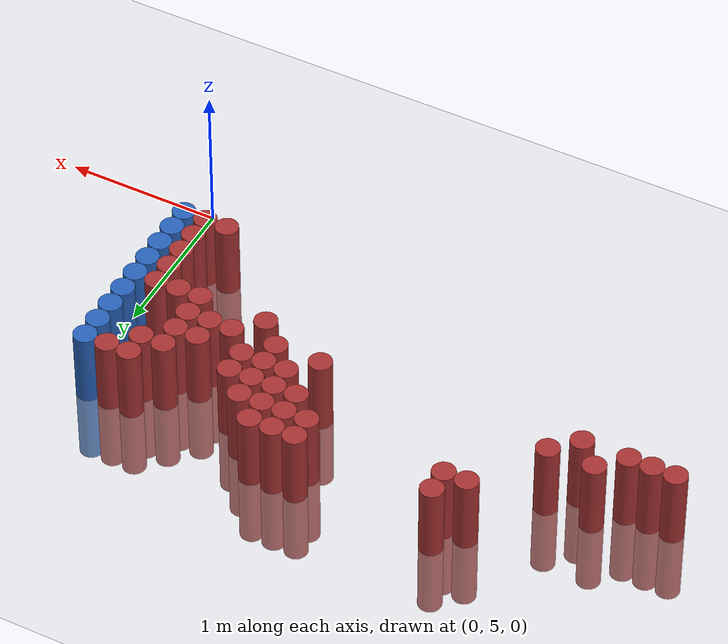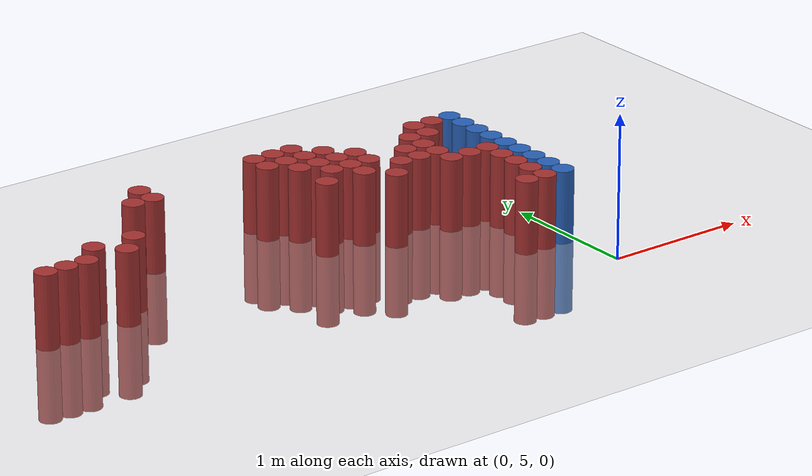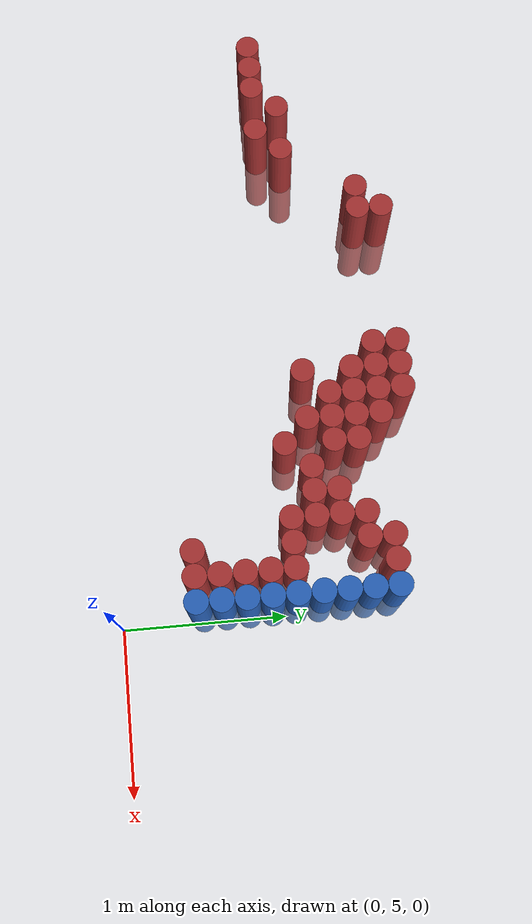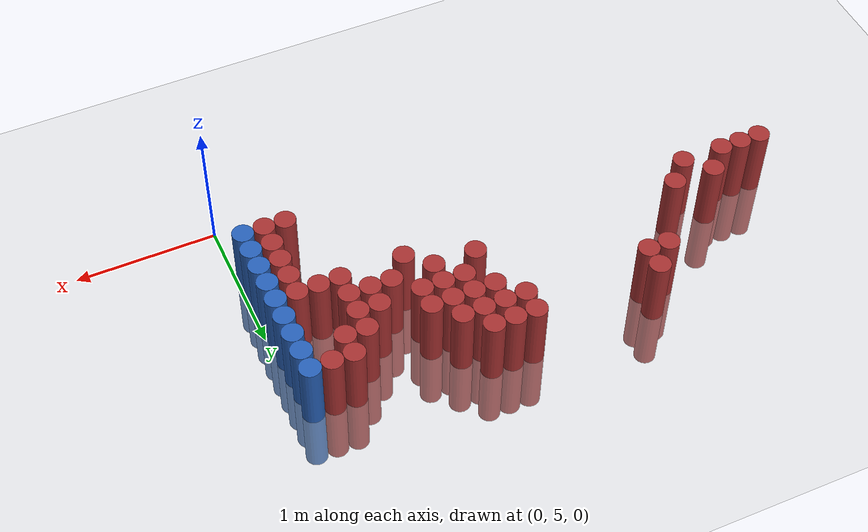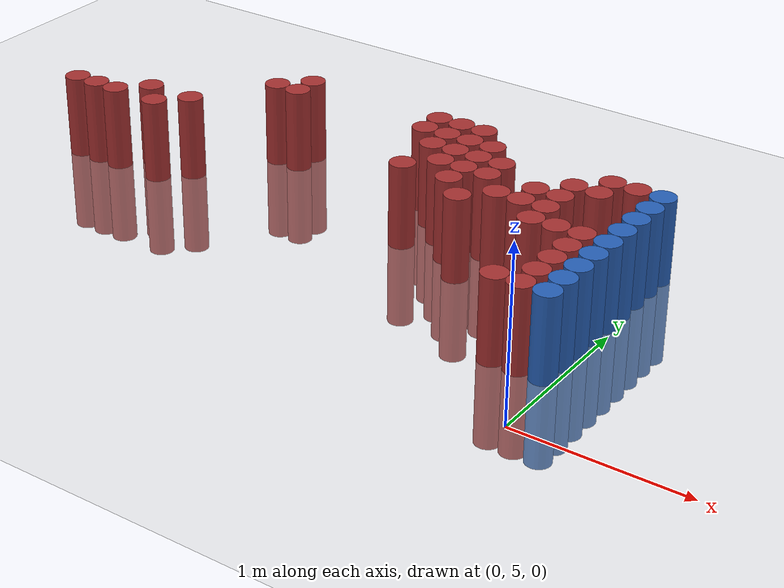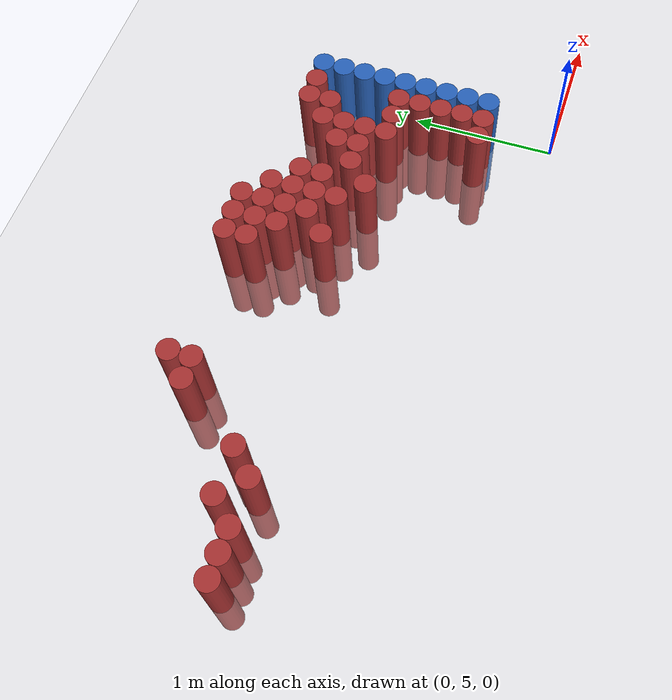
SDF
<sdf version="1.6">
 <world name="default">
  <model name="ground_plane">
   <static>1</static>
   <link name="link">
    <collision name="collision">
     <geometry><plane><normal>0 0 1</normal><size>100 100</size></plane></geometry>
     <surface><friction><ode><mu>100</mu><mu2>50</mu2></ode></friction></surface>
    </collision>
    <visual name="visual">
     <cast_shadows>0</cast_shadows>
     <geometry><plane><normal>0 0 1</normal><size>100 100</size></plane></geometry>
     <material>
      <script><uri>file://media/materials/scripts/gazebo.material</uri><name>Gazebo/Grey</name></script>
     </material>
    </visual>
   </link>
  </model>
  <model name="unit_cylinder_152">
   <static>1</static>
   <pose>-3.675000 6.075000 0.000000 0.000000 0.000000 0.000000</pose>
   <link name="link">
    <inertial>
     <mass>1</mass>
     <inertia><ixx>0.145833</ixx><ixy>0</ixy><ixz>0</ixz><iyy>0.145833</iyy><iyz>0</iyz><izz>0.125</izz></inertia>
    </inertial>
    <collision name="collision">
     <geometry><cylinder><radius>0.075000</radius><length>1</length></cylinder></geometry>
    </collision>
    <visual name="visual">
     <geometry><cylinder><radius>0.075000</radius><length>1</length></cylinder></geometry>
     <material>
      <ambient>0.648000 0.192000 0.192000 1</ambient>
      <diffuse>0.648000 0.192000 0.192000 1</diffuse>
     </material>
     <material>
      <script><name>Gazebo/Grey</name><uri>file://media/materials/scripts/gazebo.material</uri></script>
     </material>
    </visual>
   </link>
  </model>
  <model name="unit_cylinder_153">
   <static>1</static>
   <pose>-3.525000 6.075000 0.000000 0.000000 0.000000 0.000000</pose>
   <link name="link">
    <inertial>
     <mass>1</mass>
     <inertia><ixx>0.145833</ixx><ixy>0</ixy><ixz>0</ixz><iyy>0.145833</iyy><iyz>0</iyz><izz>0.125</izz></inertia>
    </inertial>
    <collision name="collision">
     <geometry><cylinder><radius>0.075000</radius><length>1</length></cylinder></geometry>
    </collision>
    <visual name="visual">
     <geometry><cylinder><radius>0.075000</radius><length>1</length></cylinder></geometry>
     <material>
      <ambient>0.648000 0.192000 0.192000 1</ambient>
      <diffuse>0.648000 0.192000 0.192000 1</diffuse>
     </material>
     <material>
      <script><name>Gazebo/Grey</name><uri>file://media/materials/scripts/gazebo.material</uri></script>
     </material>
    </visual>
   </link>
  </model>
  <model name="unit_cylinder_154">
   <static>1</static>
   <pose>-3.375000 6.075000 0.000000 0.000000 0.000000 0.000000</pose>
   <link name="link">
    <inertial>
     <mass>1</mass>
     <inertia><ixx>0.145833</ixx><ixy>0</ixy><ixz>0</ixz><iyy>0.145833</iyy><iyz>0</iyz><izz>0.125</izz></inertia>
    </inertial>
    <collision name="collision">
     <geometry><cylinder><radius>0.075000</radius><length>1</length></cylinder></geometry>
    </collision>
    <visual name="visual">
     <geometry><cylinder><radius>0.075000</radius><length>1</length></cylinder></geometry>
     <material>
      <ambient>0.648000 0.192000 0.192000 1</ambient>
      <diffuse>0.648000 0.192000 0.192000 1</diffuse>
     </material>
     <material>
      <script><name>Gazebo/Grey</name><uri>file://media/materials/scripts/gazebo.material</uri></script>
     </material>
    </visual>
   </link>
  </model>
  <model name="unit_cylinder_155">
   <static>1</static>
   <pose>-3.225000 6.225000 0.000000 0.000000 0.000000 0.000000</pose>
   <link name="link">
    <inertial>
     <mass>1</mass>
     <inertia><ixx>0.145833</ixx><ixy>0</ixy><ixz>0</ixz><iyy>0.145833</iyy><iyz>0</iyz><izz>0.125</izz></inertia>
    </inertial>
    <collision name="collision">
     <geometry><cylinder><radius>0.075000</radius><length>1</length></cylinder></geometry>
    </collision>
    <visual name="visual">
     <geometry><cylinder><radius>0.075000</radius><length>1</length></cylinder></geometry>
     <material>
      <ambient>0.648000 0.192000 0.192000 1</ambient>
      <diffuse>0.648000 0.192000 0.192000 1</diffuse>
     </material>
     <material>
      <script><name>Gazebo/Grey</name><uri>file://media/materials/scripts/gazebo.material</uri></script>
     </material>
    </visual>
   </link>
  </model>
  <model name="unit_cylinder_159">
   <static>1</static>
   <pose>-3.075000 6.075000 0.000000 0.000000 0.000000 0.000000</pose>
   <link name="link">
    <inertial>
     <mass>1</mass>
     <inertia><ixx>0.145833</ixx><ixy>0</ixy><ixz>0</ixz><iyy>0.145833</iyy><iyz>0</iyz><izz>0.125</izz></inertia>
    </inertial>
    <collision name="collision">
     <geometry><cylinder><radius>0.075000</radius><length>1</length></cylinder></geometry>
    </collision>
    <visual name="visual">
     <geometry><cylinder><radius>0.075000</radius><length>1</length></cylinder></geometry>
     <material>
      <ambient>0.648000 0.192000 0.192000 1</ambient>
      <diffuse>0.648000 0.192000 0.192000 1</diffuse>
     </material>
     <material>
      <script><name>Gazebo/Grey</name><uri>file://media/materials/scripts/gazebo.material</uri></script>
     </material>
    </visual>
   </link>
  </model>
  <model name="unit_cylinder_164">
   <static>1</static>
   <pose>-2.925000 6.225000 0.000000 0.000000 0.000000 0.000000</pose>
   <link name="link">
    <inertial>
     <mass>1</mass>
     <inertia><ixx>0.145833</ixx><ixy>0</ixy><ixz>0</ixz><iyy>0.145833</iyy><iyz>0</iyz><izz>0.125</izz></inertia>
    </inertial>
    <collision name="collision">
     <geometry><cylinder><radius>0.075000</radius><length>1</length></cylinder></geometry>
    </collision>
    <visual name="visual">
     <geometry><cylinder><radius>0.075000</radius><length>1</length></cylinder></geometry>
     <material>
      <ambient>0.648000 0.192000 0.192000 1</ambient>
      <diffuse>0.648000 0.192000 0.192000 1</diffuse>
     </material>
     <material>
      <script><name>Gazebo/Grey</name><uri>file://media/materials/scripts/gazebo.material</uri></script>
     </material>
    </visual>
   </link>
  </model>
  <model name="unit_cylinder_170">
   <static>1</static>
   <pose>-2.625000 6.675000 0.000000 0.000000 0.000000 0.000000</pose>
   <link name="link">
    <inertial>
     <mass>1</mass>
     <inertia><ixx>0.145833</ixx><ixy>0</ixy><ixz>0</ixz><iyy>0.145833</iyy><iyz>0</iyz><izz>0.125</izz></inertia>
    </inertial>
    <collision name="collision">
     <geometry><cylinder><radius>0.075000</radius><length>1</length></cylinder></geometry>
    </collision>
    <visual name="visual">
     <geometry><cylinder><radius>0.075000</radius><length>1</length></cylinder></geometry>
     <material>
      <ambient>0.648000 0.192000 0.192000 1</ambient>
      <diffuse>0.648000 0.192000 0.192000 1</diffuse>
     </material>
     <material>
      <script><name>Gazebo/Grey</name><uri>file://media/materials/scripts/gazebo.material</uri></script>
     </material>
    </visual>
   </link>
  </model>
  <model name="unit_cylinder_172">
   <static>1</static>
   <pose>-2.475000 6.675000 0.000000 0.000000 0.000000 0.000000</pose>
   <link name="link">
    <inertial>
     <mass>1</mass>
     <inertia><ixx>0.145833</ixx><ixy>0</ixy><ixz>0</ixz><iyy>0.145833</iyy><iyz>0</iyz><izz>0.125</izz></inertia>
    </inertial>
    <collision name="collision">
     <geometry><cylinder><radius>0.075000</radius><length>1</length></cylinder></geometry>
    </collision>
    <visual name="visual">
     <geometry><cylinder><radius>0.075000</radius><length>1</length></cylinder></geometry>
     <material>
      <ambient>0.648000 0.192000 0.192000 1</ambient>
      <diffuse>0.648000 0.192000 0.192000 1</diffuse>
     </material>
     <material>
      <script><name>Gazebo/Grey</name><uri>file://media/materials/scripts/gazebo.material</uri></script>
     </material>
    </visual>
   </link>
  </model>
  <model name="unit_cylinder_173">
   <static>1</static>
   <pose>-2.475000 6.825000 0.000000 0.000000 0.000000 0.000000</pose>
   <link name="link">
    <inertial>
     <mass>1</mass>
     <inertia><ixx>0.145833</ixx><ixy>0</ixy><ixz>0</ixz><iyy>0.145833</iyy><iyz>0</iyz><izz>0.125</izz></inertia>
    </inertial>
    <collision name="collision">
     <geometry><cylinder><radius>0.075000</radius><length>1</length></cylinder></geometry>
    </collision>
    <visual name="visual">
     <geometry><cylinder><radius>0.075000</radius><length>1</length></cylinder></geometry>
     <material>
      <ambient>0.648000 0.192000 0.192000 1</ambient>
      <diffuse>0.648000 0.192000 0.192000 1</diffuse>
     </material>
     <material>
      <script><name>Gazebo/Grey</name><uri>file://media/materials/scripts/gazebo.material</uri></script>
     </material>
    </visual>
   </link>
  </model>
  <model name="unit_cylinder_187">
   <static>1</static>
   <pose>-1.575000 6.675000 0.000000 0.000000 0.000000 0.000000</pose>
   <link name="link">
    <inertial>
     <mass>1</mass>
     <inertia><ixx>0.145833</ixx><ixy>0</ixy><ixz>0</ixz><iyy>0.145833</iyy><iyz>0</iyz><izz>0.125</izz></inertia>
    </inertial>
    <collision name="collision">
     <geometry><cylinder><radius>0.075000</radius><length>1</length></cylinder></geometry>
    </collision>
    <visual name="visual">
     <geometry><cylinder><radius>0.075000</radius><length>1</length></cylinder></geometry>
     <material>
      <ambient>0.648000 0.192000 0.192000 1</ambient>
      <diffuse>0.648000 0.192000 0.192000 1</diffuse>
     </material>
     <material>
      <script><name>Gazebo/Grey</name><uri>file://media/materials/scripts/gazebo.material</uri></script>
     </material>
    </visual>
   </link>
  </model>
  <model name="unit_cylinder_188">
   <static>1</static>
   <pose>-1.575000 6.825000 0.000000 0.000000 0.000000 0.000000</pose>
   <link name="link">
    <inertial>
     <mass>1</mass>
     <inertia><ixx>0.145833</ixx><ixy>0</ixy><ixz>0</ixz><iyy>0.145833</iyy><iyz>0</iyz><izz>0.125</izz></inertia>
    </inertial>
    <collision name="collision">
     <geometry><cylinder><radius>0.075000</radius><length>1</length></cylinder></geometry>
    </collision>
    <visual name="visual">
     <geometry><cylinder><radius>0.075000</radius><length>1</length></cylinder></geometry>
     <material>
      <ambient>0.648000 0.192000 0.192000 1</ambient>
      <diffuse>0.648000 0.192000 0.192000 1</diffuse>
     </material>
     <material>
      <script><name>Gazebo/Grey</name><uri>file://media/materials/scripts/gazebo.material</uri></script>
     </material>
    </visual>
   </link>
  </model>
  <model name="unit_cylinder_189">
   <static>1</static>
   <pose>-1.425000 6.225000 0.000000 0.000000 0.000000 0.000000</pose>
   <link name="link">
    <inertial>
     <mass>1</mass>
     <inertia><ixx>0.145833</ixx><ixy>0</ixy><ixz>0</ixz><iyy>0.145833</iyy><iyz>0</iyz><izz>0.125</izz></inertia>
    </inertial>
    <collision name="collision">
     <geometry><cylinder><radius>0.075000</radius><length>1</length></cylinder></geometry>
    </collision>
    <visual name="visual">
     <geometry><cylinder><radius>0.075000</radius><length>1</length></cylinder></geometry>
     <material>
      <ambient>0.648000 0.192000 0.192000 1</ambient>
      <diffuse>0.648000 0.192000 0.192000 1</diffuse>
     </material>
     <material>
      <script><name>Gazebo/Grey</name><uri>file://media/materials/scripts/gazebo.material</uri></script>
     </material>
    </visual>
   </link>
  </model>
  <model name="unit_cylinder_190">
   <static>1</static>
   <pose>-1.425000 6.525000 0.000000 0.000000 0.000000 0.000000</pose>
   <link name="link">
    <inertial>
     <mass>1</mass>
     <inertia><ixx>0.145833</ixx><ixy>0</ixy><ixz>0</ixz><iyy>0.145833</iyy><iyz>0</iyz><izz>0.125</izz></inertia>
    </inertial>
    <collision name="collision">
     <geometry><cylinder><radius>0.075000</radius><length>1</length></cylinder></geometry>
    </collision>
    <visual name="visual">
     <geometry><cylinder><radius>0.075000</radius><length>1</length></cylinder></geometry>
     <material>
      <ambient>0.648000 0.192000 0.192000 1</ambient>
      <diffuse>0.648000 0.192000 0.192000 1</diffuse>
     </material>
     <material>
      <script><name>Gazebo/Grey</name><uri>file://media/materials/scripts/gazebo.material</uri></script>
     </material>
    </visual>
   </link>
  </model>
  <model name="unit_cylinder_191">
   <static>1</static>
   <pose>-1.425000 6.675000 0.000000 0.000000 0.000000 0.000000</pose>
   <link name="link">
    <inertial>
     <mass>1</mass>
     <inertia><ixx>0.145833</ixx><ixy>0</ixy><ixz>0</ixz><iyy>0.145833</iyy><iyz>0</iyz><izz>0.125</izz></inertia>
    </inertial>
    <collision name="collision">
     <geometry><cylinder><radius>0.075000</radius><length>1</length></cylinder></geometry>
    </collision>
    <visual name="visual">
     <geometry><cylinder><radius>0.075000</radius><length>1</length></cylinder></geometry>
     <material>
      <ambient>0.648000 0.192000 0.192000 1</ambient>
      <diffuse>0.648000 0.192000 0.192000 1</diffuse>
     </material>
     <material>
      <script><name>Gazebo/Grey</name><uri>file://media/materials/scripts/gazebo.material</uri></script>
     </material>
    </visual>
   </link>
  </model>
  <model name="unit_cylinder_192">
   <static>1</static>
   <pose>-1.425000 6.825000 0.000000 0.000000 0.000000 0.000000</pose>
   <link name="link">
    <inertial>
     <mass>1</mass>
     <inertia><ixx>0.145833</ixx><ixy>0</ixy><ixz>0</ixz><iyy>0.145833</iyy><iyz>0</iyz><izz>0.125</izz></inertia>
    </inertial>
    <collision name="collision">
     <geometry><cylinder><radius>0.075000</radius><length>1</length></cylinder></geometry>
    </collision>
    <visual name="visual">
     <geometry><cylinder><radius>0.075000</radius><length>1</length></cylinder></geometry>
     <material>
      <ambient>0.648000 0.192000 0.192000 1</ambient>
      <diffuse>0.648000 0.192000 0.192000 1</diffuse>
     </material>
     <material>
      <script><name>Gazebo/Grey</name><uri>file://media/materials/scripts/gazebo.material</uri></script>
     </material>
    </visual>
   </link>
  </model>
  <model name="unit_cylinder_195">
   <static>1</static>
   <pose>-1.275000 6.375000 0.000000 0.000000 0.000000 0.000000</pose>
   <link name="link">
    <inertial>
     <mass>1</mass>
     <inertia><ixx>0.145833</ixx><ixy>0</ixy><ixz>0</ixz><iyy>0.145833</iyy><iyz>0</iyz><izz>0.125</izz></inertia>
    </inertial>
    <collision name="collision">
     <geometry><cylinder><radius>0.075000</radius><length>1</length></cylinder></geometry>
    </collision>
    <visual name="visual">
     <geometry><cylinder><radius>0.075000</radius><length>1</length></cylinder></geometry>
     <material>
      <ambient>0.648000 0.192000 0.192000 1</ambient>
      <diffuse>0.648000 0.192000 0.192000 1</diffuse>
     </material>
     <material>
      <script><name>Gazebo/Grey</name><uri>file://media/materials/scripts/gazebo.material</uri></script>
     </material>
    </visual>
   </link>
  </model>
  <model name="unit_cylinder_196">
   <static>1</static>
   <pose>-1.275000 6.525000 0.000000 0.000000 0.000000 0.000000</pose>
   <link name="link">
    <inertial>
     <mass>1</mass>
     <inertia><ixx>0.145833</ixx><ixy>0</ixy><ixz>0</ixz><iyy>0.145833</iyy><iyz>0</iyz><izz>0.125</izz></inertia>
    </inertial>
    <collision name="collision">
     <geometry><cylinder><radius>0.075000</radius><length>1</length></cylinder></geometry>
    </collision>
    <visual name="visual">
     <geometry><cylinder><radius>0.075000</radius><length>1</length></cylinder></geometry>
     <material>
      <ambient>0.648000 0.192000 0.192000 1</ambient>
      <diffuse>0.648000 0.192000 0.192000 1</diffuse>
     </material>
     <material>
      <script><name>Gazebo/Grey</name><uri>file://media/materials/scripts/gazebo.material</uri></script>
     </material>
    </visual>
   </link>
  </model>
  <model name="unit_cylinder_197">
   <static>1</static>
   <pose>-1.275000 6.675000 0.000000 0.000000 0.000000 0.000000</pose>
   <link name="link">
    <inertial>
     <mass>1</mass>
     <inertia><ixx>0.145833</ixx><ixy>0</ixy><ixz>0</ixz><iyy>0.145833</iyy><iyz>0</iyz><izz>0.125</izz></inertia>
    </inertial>
    <collision name="collision">
     <geometry><cylinder><radius>0.075000</radius><length>1</length></cylinder></geometry>
    </collision>
    <visual name="visual">
     <geometry><cylinder><radius>0.075000</radius><length>1</length></cylinder></geometry>
     <material>
      <ambient>0.648000 0.192000 0.192000 1</ambient>
      <diffuse>0.648000 0.192000 0.192000 1</diffuse>
     </material>
     <material>
      <script><name>Gazebo/Grey</name><uri>file://media/materials/scripts/gazebo.material</uri></script>
     </material>
    </visual>
   </link>
  </model>
  <model name="unit_cylinder_198">
   <static>1</static>
   <pose>-1.275000 6.825000 0.000000 0.000000 0.000000 0.000000</pose>
   <link name="link">
    <inertial>
     <mass>1</mass>
     <inertia><ixx>0.145833</ixx><ixy>0</ixy><ixz>0</ixz><iyy>0.145833</iyy><iyz>0</iyz><izz>0.125</izz></inertia>
    </inertial>
    <collision name="collision">
     <geometry><cylinder><radius>0.075000</radius><length>1</length></cylinder></geometry>
    </collision>
    <visual name="visual">
     <geometry><cylinder><radius>0.075000</radius><length>1</length></cylinder></geometry>
     <material>
      <ambient>0.648000 0.192000 0.192000 1</ambient>
      <diffuse>0.648000 0.192000 0.192000 1</diffuse>
     </material>
     <material>
      <script><name>Gazebo/Grey</name><uri>file://media/materials/scripts/gazebo.material</uri></script>
     </material>
    </visual>
   </link>
  </model>
  <model name="unit_cylinder_202">
   <static>1</static>
   <pose>-1.125000 6.225000 0.000000 0.000000 0.000000 0.000000</pose>
   <link name="link">
    <inertial>
     <mass>1</mass>
     <inertia><ixx>0.145833</ixx><ixy>0</ixy><ixz>0</ixz><iyy>0.145833</iyy><iyz>0</iyz><izz>0.125</izz></inertia>
    </inertial>
    <collision name="collision">
     <geometry><cylinder><radius>0.075000</radius><length>1</length></cylinder></geometry>
    </collision>
    <visual name="visual">
     <geometry><cylinder><radius>0.075000</radius><length>1</length></cylinder></geometry>
     <material>
      <ambient>0.648000 0.192000 0.192000 1</ambient>
      <diffuse>0.648000 0.192000 0.192000 1</diffuse>
     </material>
     <material>
      <script><name>Gazebo/Grey</name><uri>file://media/materials/scripts/gazebo.material</uri></script>
     </material>
    </visual>
   </link>
  </model>
  <model name="unit_cylinder_203">
   <static>1</static>
   <pose>-1.125000 6.375000 0.000000 0.000000 0.000000 0.000000</pose>
   <link name="link">
    <inertial>
     <mass>1</mass>
     <inertia><ixx>0.145833</ixx><ixy>0</ixy><ixz>0</ixz><iyy>0.145833</iyy><iyz>0</iyz><izz>0.125</izz></inertia>
    </inertial>
    <collision name="collision">
     <geometry><cylinder><radius>0.075000</radius><length>1</length></cylinder></geometry>
    </collision>
    <visual name="visual">
     <geometry><cylinder><radius>0.075000</radius><length>1</length></cylinder></geometry>
     <material>
      <ambient>0.648000 0.192000 0.192000 1</ambient>
      <diffuse>0.648000 0.192000 0.192000 1</diffuse>
     </material>
     <material>
      <script><name>Gazebo/Grey</name><uri>file://media/materials/scripts/gazebo.material</uri></script>
     </material>
    </visual>
   </link>
  </model>
  <model name="unit_cylinder_204">
   <static>1</static>
   <pose>-1.125000 6.525000 0.000000 0.000000 0.000000 0.000000</pose>
   <link name="link">
    <inertial>
     <mass>1</mass>
     <inertia><ixx>0.145833</ixx><ixy>0</ixy><ixz>0</ixz><iyy>0.145833</iyy><iyz>0</iyz><izz>0.125</izz></inertia>
    </inertial>
    <collision name="collision">
     <geometry><cylinder><radius>0.075000</radius><length>1</length></cylinder></geometry>
    </collision>
    <visual name="visual">
     <geometry><cylinder><radius>0.075000</radius><length>1</length></cylinder></geometry>
     <material>
      <ambient>0.648000 0.192000 0.192000 1</ambient>
      <diffuse>0.648000 0.192000 0.192000 1</diffuse>
     </material>
     <material>
      <script><name>Gazebo/Grey</name><uri>file://media/materials/scripts/gazebo.material</uri></script>
     </material>
    </visual>
   </link>
  </model>
  <model name="unit_cylinder_205">
   <static>1</static>
   <pose>-1.125000 6.675000 0.000000 0.000000 0.000000 0.000000</pose>
   <link name="link">
    <inertial>
     <mass>1</mass>
     <inertia><ixx>0.145833</ixx><ixy>0</ixy><ixz>0</ixz><iyy>0.145833</iyy><iyz>0</iyz><izz>0.125</izz></inertia>
    </inertial>
    <collision name="collision">
     <geometry><cylinder><radius>0.075000</radius><length>1</length></cylinder></geometry>
    </collision>
    <visual name="visual">
     <geometry><cylinder><radius>0.075000</radius><length>1</length></cylinder></geometry>
     <material>
      <ambient>0.648000 0.192000 0.192000 1</ambient>
      <diffuse>0.648000 0.192000 0.192000 1</diffuse>
     </material>
     <material>
      <script><name>Gazebo/Grey</name><uri>file://media/materials/scripts/gazebo.material</uri></script>
     </material>
    </visual>
   </link>
  </model>
  <model name="unit_cylinder_207">
   <static>1</static>
   <pose>-0.975000 6.075000 0.000000 0.000000 0.000000 0.000000</pose>
   <link name="link">
    <inertial>
     <mass>1</mass>
     <inertia><ixx>0.145833</ixx><ixy>0</ixy><ixz>0</ixz><iyy>0.145833</iyy><iyz>0</iyz><izz>0.125</izz></inertia>
    </inertial>
    <collision name="collision">
     <geometry><cylinder><radius>0.075000</radius><length>1</length></cylinder></geometry>
    </collision>
    <visual name="visual">
     <geometry><cylinder><radius>0.075000</radius><length>1</length></cylinder></geometry>
     <material>
      <ambient>0.648000 0.192000 0.192000 1</ambient>
      <diffuse>0.648000 0.192000 0.192000 1</diffuse>
     </material>
     <material>
      <script><name>Gazebo/Grey</name><uri>file://media/materials/scripts/gazebo.material</uri></script>
     </material>
    </visual>
   </link>
  </model>
  <model name="unit_cylinder_208">
   <static>1</static>
   <pose>-0.975000 6.375000 0.000000 0.000000 0.000000 0.000000</pose>
   <link name="link">
    <inertial>
     <mass>1</mass>
     <inertia><ixx>0.145833</ixx><ixy>0</ixy><ixz>0</ixz><iyy>0.145833</iyy><iyz>0</iyz><izz>0.125</izz></inertia>
    </inertial>
    <collision name="collision">
     <geometry><cylinder><radius>0.075000</radius><length>1</length></cylinder></geometry>
    </collision>
    <visual name="visual">
     <geometry><cylinder><radius>0.075000</radius><length>1</length></cylinder></geometry>
     <material>
      <ambient>0.648000 0.192000 0.192000 1</ambient>
      <diffuse>0.648000 0.192000 0.192000 1</diffuse>
     </material>
     <material>
      <script><name>Gazebo/Grey</name><uri>file://media/materials/scripts/gazebo.material</uri></script>
     </material>
    </visual>
   </link>
  </model>
  <model name="unit_cylinder_209">
   <static>1</static>
   <pose>-0.975000 6.525000 0.000000 0.000000 0.000000 0.000000</pose>
   <link name="link">
    <inertial>
     <mass>1</mass>
     <inertia><ixx>0.145833</ixx><ixy>0</ixy><ixz>0</ixz><iyy>0.145833</iyy><iyz>0</iyz><izz>0.125</izz></inertia>
    </inertial>
    <collision name="collision">
     <geometry><cylinder><radius>0.075000</radius><length>1</length></cylinder></geometry>
    </collision>
    <visual name="visual">
     <geometry><cylinder><radius>0.075000</radius><length>1</length></cylinder></geometry>
     <material>
      <ambient>0.648000 0.192000 0.192000 1</ambient>
      <diffuse>0.648000 0.192000 0.192000 1</diffuse>
     </material>
     <material>
      <script><name>Gazebo/Grey</name><uri>file://media/materials/scripts/gazebo.material</uri></script>
     </material>
    </visual>
   </link>
  </model>
  <model name="unit_cylinder_210">
   <static>1</static>
   <pose>-0.825000 6.225000 0.000000 0.000000 0.000000 0.000000</pose>
   <link name="link">
    <inertial>
     <mass>1</mass>
     <inertia><ixx>0.145833</ixx><ixy>0</ixy><ixz>0</ixz><iyy>0.145833</iyy><iyz>0</iyz><izz>0.125</izz></inertia>
    </inertial>
    <collision name="collision">
     <geometry><cylinder><radius>0.075000</radius><length>1</length></cylinder></geometry>
    </collision>
    <visual name="visual">
     <geometry><cylinder><radius>0.075000</radius><length>1</length></cylinder></geometry>
     <material>
      <ambient>0.648000 0.192000 0.192000 1</ambient>
      <diffuse>0.648000 0.192000 0.192000 1</diffuse>
     </material>
     <material>
      <script><name>Gazebo/Grey</name><uri>file://media/materials/scripts/gazebo.material</uri></script>
     </material>
    </visual>
   </link>
  </model>
  <model name="unit_cylinder_211">
   <static>1</static>
   <pose>-0.675000 6.225000 0.000000 0.000000 0.000000 0.000000</pose>
   <link name="link">
    <inertial>
     <mass>1</mass>
     <inertia><ixx>0.145833</ixx><ixy>0</ixy><ixz>0</ixz><iyy>0.145833</iyy><iyz>0</iyz><izz>0.125</izz></inertia>
    </inertial>
    <collision name="collision">
     <geometry><cylinder><radius>0.075000</radius><length>1</length></cylinder></geometry>
    </collision>
    <visual name="visual">
     <geometry><cylinder><radius>0.075000</radius><length>1</length></cylinder></geometry>
     <material>
      <ambient>0.648000 0.192000 0.192000 1</ambient>
      <diffuse>0.648000 0.192000 0.192000 1</diffuse>
     </material>
     <material>
      <script><name>Gazebo/Grey</name><uri>file://media/materials/scripts/gazebo.material</uri></script>
     </material>
    </visual>
   </link>
  </model>
  <model name="unit_cylinder_212">
   <static>1</static>
   <pose>-0.675000 6.375000 0.000000 0.000000 0.000000 0.000000</pose>
   <link name="link">
    <inertial>
     <mass>1</mass>
     <inertia><ixx>0.145833</ixx><ixy>0</ixy><ixz>0</ixz><iyy>0.145833</iyy><iyz>0</iyz><izz>0.125</izz></inertia>
    </inertial>
    <collision name="collision">
     <geometry><cylinder><radius>0.075000</radius><length>1</length></cylinder></geometry>
    </collision>
    <visual name="visual">
     <geometry><cylinder><radius>0.075000</radius><length>1</length></cylinder></geometry>
     <material>
      <ambient>0.648000 0.192000 0.192000 1</ambient>
      <diffuse>0.648000 0.192000 0.192000 1</diffuse>
     </material>
     <material>
      <script><name>Gazebo/Grey</name><uri>file://media/materials/scripts/gazebo.material</uri></script>
     </material>
    </visual>
   </link>
  </model>
  <model name="unit_cylinder_213">
   <static>1</static>
   <pose>-0.525000 6.075000 0.000000 0.000000 0.000000 0.000000</pose>
   <link name="link">
    <inertial>
     <mass>1</mass>
     <inertia><ixx>0.145833</ixx><ixy>0</ixy><ixz>0</ixz><iyy>0.145833</iyy><iyz>0</iyz><izz>0.125</izz></inertia>
    </inertial>
    <collision name="collision">
     <geometry><cylinder><radius>0.075000</radius><length>1</length></cylinder></geometry>
    </collision>
    <visual name="visual">
     <geometry><cylinder><radius>0.075000</radius><length>1</length></cylinder></geometry>
     <material>
      <ambient>0.648000 0.192000 0.192000 1</ambient>
      <diffuse>0.648000 0.192000 0.192000 1</diffuse>
     </material>
     <material>
      <script><name>Gazebo/Grey</name><uri>file://media/materials/scripts/gazebo.material</uri></script>
     </material>
    </visual>
   </link>
  </model>
  <model name="unit_cylinder_214">
   <static>1</static>
   <pose>-0.525000 6.225000 0.000000 0.000000 0.000000 0.000000</pose>
   <link name="link">
    <inertial>
     <mass>1</mass>
     <inertia><ixx>0.145833</ixx><ixy>0</ixy><ixz>0</ixz><iyy>0.145833</iyy><iyz>0</iyz><izz>0.125</izz></inertia>
    </inertial>
    <collision name="collision">
     <geometry><cylinder><radius>0.075000</radius><length>1</length></cylinder></geometry>
    </collision>
    <visual name="visual">
     <geometry><cylinder><radius>0.075000</radius><length>1</length></cylinder></geometry>
     <material>
      <ambient>0.648000 0.192000 0.192000 1</ambient>
      <diffuse>0.648000 0.192000 0.192000 1</diffuse>
     </material>
     <material>
      <script><name>Gazebo/Grey</name><uri>file://media/materials/scripts/gazebo.material</uri></script>
     </material>
    </visual>
   </link>
  </model>
  <model name="unit_cylinder_215">
   <static>1</static>
   <pose>-0.525000 6.375000 0.000000 0.000000 0.000000 0.000000</pose>
   <link name="link">
    <inertial>
     <mass>1</mass>
     <inertia><ixx>0.145833</ixx><ixy>0</ixy><ixz>0</ixz><iyy>0.145833</iyy><iyz>0</iyz><izz>0.125</izz></inertia>
    </inertial>
    <collision name="collision">
     <geometry><cylinder><radius>0.075000</radius><length>1</length></cylinder></geometry>
    </collision>
    <visual name="visual">
     <geometry><cylinder><radius>0.075000</radius><length>1</length></cylinder></geometry>
     <material>
      <ambient>0.648000 0.192000 0.192000 1</ambient>
      <diffuse>0.648000 0.192000 0.192000 1</diffuse>
     </material>
     <material>
      <script><name>Gazebo/Grey</name><uri>file://media/materials/scripts/gazebo.material</uri></script>
     </material>
    </visual>
   </link>
  </model>
  <model name="unit_cylinder_216">
   <static>1</static>
   <pose>-0.525000 6.525000 0.000000 0.000000 0.000000 0.000000</pose>
   <link name="link">
    <inertial>
     <mass>1</mass>
     <inertia><ixx>0.145833</ixx><ixy>0</ixy><ixz>0</ixz><iyy>0.145833</iyy><iyz>0</iyz><izz>0.125</izz></inertia>
    </inertial>
    <collision name="collision">
     <geometry><cylinder><radius>0.075000</radius><length>1</length></cylinder></geometry>
    </collision>
    <visual name="visual">
     <geometry><cylinder><radius>0.075000</radius><length>1</length></cylinder></geometry>
     <material>
      <ambient>0.648000 0.192000 0.192000 1</ambient>
      <diffuse>0.648000 0.192000 0.192000 1</diffuse>
     </material>
     <material>
      <script><name>Gazebo/Grey</name><uri>file://media/materials/scripts/gazebo.material</uri></script>
     </material>
    </visual>
   </link>
  </model>
  <model name="unit_cylinder_218">
   <static>1</static>
   <pose>-0.375000 5.475000 0.000000 0.000000 0.000000 0.000000</pose>
   <link name="link">
    <inertial>
     <mass>1</mass>
     <inertia><ixx>0.145833</ixx><ixy>0</ixy><ixz>0</ixz><iyy>0.145833</iyy><iyz>0</iyz><izz>0.125</izz></inertia>
    </inertial>
    <collision name="collision">
     <geometry><cylinder><radius>0.075000</radius><length>1</length></cylinder></geometry>
    </collision>
    <visual name="visual">
     <geometry><cylinder><radius>0.075000</radius><length>1</length></cylinder></geometry>
     <material>
      <ambient>0.648000 0.192000 0.192000 1</ambient>
      <diffuse>0.648000 0.192000 0.192000 1</diffuse>
     </material>
     <material>
      <script><name>Gazebo/Grey</name><uri>file://media/materials/scripts/gazebo.material</uri></script>
     </material>
    </visual>
   </link>
  </model>
  <model name="unit_cylinder_219">
   <static>1</static>
   <pose>-0.375000 6.075000 0.000000 0.000000 0.000000 0.000000</pose>
   <link name="link">
    <inertial>
     <mass>1</mass>
     <inertia><ixx>0.145833</ixx><ixy>0</ixy><ixz>0</ixz><iyy>0.145833</iyy><iyz>0</iyz><izz>0.125</izz></inertia>
    </inertial>
    <collision name="collision">
     <geometry><cylinder><radius>0.075000</radius><length>1</length></cylinder></geometry>
    </collision>
    <visual name="visual">
     <geometry><cylinder><radius>0.075000</radius><length>1</length></cylinder></geometry>
     <material>
      <ambient>0.648000 0.192000 0.192000 1</ambient>
      <diffuse>0.648000 0.192000 0.192000 1</diffuse>
     </material>
     <material>
      <script><name>Gazebo/Grey</name><uri>file://media/materials/scripts/gazebo.material</uri></script>
     </material>
    </visual>
   </link>
  </model>
  <model name="unit_cylinder_220">
   <static>1</static>
   <pose>-0.375000 6.525000 0.000000 0.000000 0.000000 0.000000</pose>
   <link name="link">
    <inertial>
     <mass>1</mass>
     <inertia><ixx>0.145833</ixx><ixy>0</ixy><ixz>0</ixz><iyy>0.145833</iyy><iyz>0</iyz><izz>0.125</izz></inertia>
    </inertial>
    <collision name="collision">
     <geometry><cylinder><radius>0.075000</radius><length>1</length></cylinder></geometry>
    </collision>
    <visual name="visual">
     <geometry><cylinder><radius>0.075000</radius><length>1</length></cylinder></geometry>
     <material>
      <ambient>0.648000 0.192000 0.192000 1</ambient>
      <diffuse>0.648000 0.192000 0.192000 1</diffuse>
     </material>
     <material>
      <script><name>Gazebo/Grey</name><uri>file://media/materials/scripts/gazebo.material</uri></script>
     </material>
    </visual>
   </link>
  </model>
  <model name="unit_cylinder_221">
   <static>1</static>
   <pose>-0.375000 6.675000 0.000000 0.000000 0.000000 0.000000</pose>
   <link name="link">
    <inertial>
     <mass>1</mass>
     <inertia><ixx>0.145833</ixx><ixy>0</ixy><ixz>0</ixz><iyy>0.145833</iyy><iyz>0</iyz><izz>0.125</izz></inertia>
    </inertial>
    <collision name="collision">
     <geometry><cylinder><radius>0.075000</radius><length>1</length></cylinder></geometry>
    </collision>
    <visual name="visual">
     <geometry><cylinder><radius>0.075000</radius><length>1</length></cylinder></geometry>
     <material>
      <ambient>0.648000 0.192000 0.192000 1</ambient>
      <diffuse>0.648000 0.192000 0.192000 1</diffuse>
     </material>
     <material>
      <script><name>Gazebo/Grey</name><uri>file://media/materials/scripts/gazebo.material</uri></script>
     </material>
    </visual>
   </link>
  </model>
  <model name="unit_cylinder_223">
   <static>1</static>
   <pose>-0.225000 5.475000 0.000000 0.000000 0.000000 0.000000</pose>
   <link name="link">
    <inertial>
     <mass>1</mass>
     <inertia><ixx>0.145833</ixx><ixy>0</ixy><ixz>0</ixz><iyy>0.145833</iyy><iyz>0</iyz><izz>0.125</izz></inertia>
    </inertial>
    <collision name="collision">
     <geometry><cylinder><radius>0.075000</radius><length>1</length></cylinder></geometry>
    </collision>
    <visual name="visual">
     <geometry><cylinder><radius>0.075000</radius><length>1</length></cylinder></geometry>
     <material>
      <ambient>0.648000 0.192000 0.192000 1</ambient>
      <diffuse>0.648000 0.192000 0.192000 1</diffuse>
     </material>
     <material>
      <script><name>Gazebo/Grey</name><uri>file://media/materials/scripts/gazebo.material</uri></script>
     </material>
    </visual>
   </link>
  </model>
  <model name="unit_cylinder_224">
   <static>1</static>
   <pose>-0.225000 5.625000 0.000000 0.000000 0.000000 0.000000</pose>
   <link name="link">
    <inertial>
     <mass>1</mass>
     <inertia><ixx>0.145833</ixx><ixy>0</ixy><ixz>0</ixz><iyy>0.145833</iyy><iyz>0</iyz><izz>0.125</izz></inertia>
    </inertial>
    <collision name="collision">
     <geometry><cylinder><radius>0.075000</radius><length>1</length></cylinder></geometry>
    </collision>
    <visual name="visual">
     <geometry><cylinder><radius>0.075000</radius><length>1</length></cylinder></geometry>
     <material>
      <ambient>0.648000 0.192000 0.192000 1</ambient>
      <diffuse>0.648000 0.192000 0.192000 1</diffuse>
     </material>
     <material>
      <script><name>Gazebo/Grey</name><uri>file://media/materials/scripts/gazebo.material</uri></script>
     </material>
    </visual>
   </link>
  </model>
  <model name="unit_cylinder_225">
   <static>1</static>
   <pose>-0.225000 5.775000 0.000000 0.000000 0.000000 0.000000</pose>
   <link name="link">
    <inertial>
     <mass>1</mass>
     <inertia><ixx>0.145833</ixx><ixy>0</ixy><ixz>0</ixz><iyy>0.145833</iyy><iyz>0</iyz><izz>0.125</izz></inertia>
    </inertial>
    <collision name="collision">
     <geometry><cylinder><radius>0.075000</radius><length>1</length></cylinder></geometry>
    </collision>
    <visual name="visual">
     <geometry><cylinder><radius>0.075000</radius><length>1</length></cylinder></geometry>
     <material>
      <ambient>0.648000 0.192000 0.192000 1</ambient>
      <diffuse>0.648000 0.192000 0.192000 1</diffuse>
     </material>
     <material>
      <script><name>Gazebo/Grey</name><uri>file://media/materials/scripts/gazebo.material</uri></script>
     </material>
    </visual>
   </link>
  </model>
  <model name="unit_cylinder_226">
   <static>1</static>
   <pose>-0.225000 5.925000 0.000000 0.000000 0.000000 0.000000</pose>
   <link name="link">
    <inertial>
     <mass>1</mass>
     <inertia><ixx>0.145833</ixx><ixy>0</ixy><ixz>0</ixz><iyy>0.145833</iyy><iyz>0</iyz><izz>0.125</izz></inertia>
    </inertial>
    <collision name="collision">
     <geometry><cylinder><radius>0.075000</radius><length>1</length></cylinder></geometry>
    </collision>
    <visual name="visual">
     <geometry><cylinder><radius>0.075000</radius><length>1</length></cylinder></geometry>
     <material>
      <ambient>0.648000 0.192000 0.192000 1</ambient>
      <diffuse>0.648000 0.192000 0.192000 1</diffuse>
     </material>
     <material>
      <script><name>Gazebo/Grey</name><uri>file://media/materials/scripts/gazebo.material</uri></script>
     </material>
    </visual>
   </link>
  </model>
  <model name="unit_cylinder_227">
   <static>1</static>
   <pose>-0.225000 6.075000 0.000000 0.000000 0.000000 0.000000</pose>
   <link name="link">
    <inertial>
     <mass>1</mass>
     <inertia><ixx>0.145833</ixx><ixy>0</ixy><ixz>0</ixz><iyy>0.145833</iyy><iyz>0</iyz><izz>0.125</izz></inertia>
    </inertial>
    <collision name="collision">
     <geometry><cylinder><radius>0.075000</radius><length>1</length></cylinder></geometry>
    </collision>
    <visual name="visual">
     <geometry><cylinder><radius>0.075000</radius><length>1</length></cylinder></geometry>
     <material>
      <ambient>0.648000 0.192000 0.192000 1</ambient>
      <diffuse>0.648000 0.192000 0.192000 1</diffuse>
     </material>
     <material>
      <script><name>Gazebo/Grey</name><uri>file://media/materials/scripts/gazebo.material</uri></script>
     </material>
    </visual>
   </link>
  </model>
  <model name="unit_cylinder_228">
   <static>1</static>
   <pose>-0.225000 6.675000 0.000000 0.000000 0.000000 0.000000</pose>
   <link name="link">
    <inertial>
     <mass>1</mass>
     <inertia><ixx>0.145833</ixx><ixy>0</ixy><ixz>0</ixz><iyy>0.145833</iyy><iyz>0</iyz><izz>0.125</izz></inertia>
    </inertial>
    <collision name="collision">
     <geometry><cylinder><radius>0.075000</radius><length>1</length></cylinder></geometry>
    </collision>
    <visual name="visual">
     <geometry><cylinder><radius>0.075000</radius><length>1</length></cylinder></geometry>
     <material>
      <ambient>0.648000 0.192000 0.192000 1</ambient>
      <diffuse>0.648000 0.192000 0.192000 1</diffuse>
     </material>
     <material>
      <script><name>Gazebo/Grey</name><uri>file://media/materials/scripts/gazebo.material</uri></script>
     </material>
    </visual>
   </link>
  </model>
  <model name="unit_cylinder_233">
   <static>1</static>
   <pose>-0.075000 5.475000 0.000000 0.000000 0.000000 0.000000</pose>
   <link name="link">
    <inertial>
     <mass>1</mass>
     <inertia><ixx>0.145833</ixx><ixy>0</ixy><ixz>0</ixz><iyy>0.145833</iyy><iyz>0</iyz><izz>0.125</izz></inertia>
    </inertial>
    <collision name="collision">
     <geometry><cylinder><radius>0.075000</radius><length>1</length></cylinder></geometry>
    </collision>
    <visual name="visual">
     <geometry><cylinder><radius>0.075000</radius><length>1</length></cylinder></geometry>
     <material>
      <ambient>0.152000 0.379000 0.720000 1</ambient>
      <diffuse>0.152000 0.379000 0.720000 1</diffuse>
     </material>
     <material>
      <script><name>Gazebo/Grey</name><uri>file://media/materials/scripts/gazebo.material</uri></script>
     </material>
    </visual>
   </link>
  </model>
  <model name="unit_cylinder_234">
   <static>1</static>
   <pose>-0.075000 5.625000 0.000000 0.000000 0.000000 0.000000</pose>
   <link name="link">
    <inertial>
     <mass>1</mass>
     <inertia><ixx>0.145833</ixx><ixy>0</ixy><ixz>0</ixz><iyy>0.145833</iyy><iyz>0</iyz><izz>0.125</izz></inertia>
    </inertial>
    <collision name="collision">
     <geometry><cylinder><radius>0.075000</radius><length>1</length></cylinder></geometry>
    </collision>
    <visual name="visual">
     <geometry><cylinder><radius>0.075000</radius><length>1</length></cylinder></geometry>
     <material>
      <ambient>0.152000 0.379000 0.720000 1</ambient>
      <diffuse>0.152000 0.379000 0.720000 1</diffuse>
     </material>
     <material>
      <script><name>Gazebo/Grey</name><uri>file://media/materials/scripts/gazebo.material</uri></script>
     </material>
    </visual>
   </link>
  </model>
  <model name="unit_cylinder_235">
   <static>1</static>
   <pose>-0.075000 5.775000 0.000000 0.000000 0.000000 0.000000</pose>
   <link name="link">
    <inertial>
     <mass>1</mass>
     <inertia><ixx>0.145833</ixx><ixy>0</ixy><ixz>0</ixz><iyy>0.145833</iyy><iyz>0</iyz><izz>0.125</izz></inertia>
    </inertial>
    <collision name="collision">
     <geometry><cylinder><radius>0.075000</radius><length>1</length></cylinder></geometry>
    </collision>
    <visual name="visual">
     <geometry><cylinder><radius>0.075000</radius><length>1</length></cylinder></geometry>
     <material>
      <ambient>0.152000 0.379000 0.720000 1</ambient>
      <diffuse>0.152000 0.379000 0.720000 1</diffuse>
     </material>
     <material>
      <script><name>Gazebo/Grey</name><uri>file://media/materials/scripts/gazebo.material</uri></script>
     </material>
    </visual>
   </link>
  </model>
  <model name="unit_cylinder_236">
   <static>1</static>
   <pose>-0.075000 5.925000 0.000000 0.000000 0.000000 0.000000</pose>
   <link name="link">
    <inertial>
     <mass>1</mass>
     <inertia><ixx>0.145833</ixx><ixy>0</ixy><ixz>0</ixz><iyy>0.145833</iyy><iyz>0</iyz><izz>0.125</izz></inertia>
    </inertial>
    <collision name="collision">
     <geometry><cylinder><radius>0.075000</radius><length>1</length></cylinder></geometry>
    </collision>
    <visual name="visual">
     <geometry><cylinder><radius>0.075000</radius><length>1</length></cylinder></geometry>
     <material>
      <ambient>0.152000 0.379000 0.720000 1</ambient>
      <diffuse>0.152000 0.379000 0.720000 1</diffuse>
     </material>
     <material>
      <script><name>Gazebo/Grey</name><uri>file://media/materials/scripts/gazebo.material</uri></script>
     </material>
    </visual>
   </link>
  </model>
  <model name="unit_cylinder_237">
   <static>1</static>
   <pose>-0.075000 6.075000 0.000000 0.000000 0.000000 0.000000</pose>
   <link name="link">
    <inertial>
     <mass>1</mass>
     <inertia><ixx>0.145833</ixx><ixy>0</ixy><ixz>0</ixz><iyy>0.145833</iyy><iyz>0</iyz><izz>0.125</izz></inertia>
    </inertial>
    <collision name="collision">
     <geometry><cylinder><radius>0.075000</radius><length>1</length></cylinder></geometry>
    </collision>
    <visual name="visual">
     <geometry><cylinder><radius>0.075000</radius><length>1</length></cylinder></geometry>
     <material>
      <ambient>0.152000 0.379000 0.720000 1</ambient>
      <diffuse>0.152000 0.379000 0.720000 1</diffuse>
     </material>
     <material>
      <script><name>Gazebo/Grey</name><uri>file://media/materials/scripts/gazebo.material</uri></script>
     </material>
    </visual>
   </link>
  </model>
  <model name="unit_cylinder_238">
   <static>1</static>
   <pose>-0.075000 6.225000 0.000000 0.000000 0.000000 0.000000</pose>
   <link name="link">
    <inertial>
     <mass>1</mass>
     <inertia><ixx>0.145833</ixx><ixy>0</ixy><ixz>0</ixz><iyy>0.145833</iyy><iyz>0</iyz><izz>0.125</izz></inertia>
    </inertial>
    <collision name="collision">
     <geometry><cylinder><radius>0.075000</radius><length>1</length></cylinder></geometry>
    </collision>
    <visual name="visual">
     <geometry><cylinder><radius>0.075000</radius><length>1</length></cylinder></geometry>
     <material>
      <ambient>0.152000 0.379000 0.720000 1</ambient>
      <diffuse>0.152000 0.379000 0.720000 1</diffuse>
     </material>
     <material>
      <script><name>Gazebo/Grey</name><uri>file://media/materials/scripts/gazebo.material</uri></script>
     </material>
    </visual>
   </link>
  </model>
  <model name="unit_cylinder_239">
   <static>1</static>
   <pose>-0.075000 6.375000 0.000000 0.000000 0.000000 0.000000</pose>
   <link name="link">
    <inertial>
     <mass>1</mass>
     <inertia><ixx>0.145833</ixx><ixy>0</ixy><ixz>0</ixz><iyy>0.145833</iyy><iyz>0</iyz><izz>0.125</izz></inertia>
    </inertial>
    <collision name="collision">
     <geometry><cylinder><radius>0.075000</radius><length>1</length></cylinder></geometry>
    </collision>
    <visual name="visual">
     <geometry><cylinder><radius>0.075000</radius><length>1</length></cylinder></geometry>
     <material>
      <ambient>0.152000 0.379000 0.720000 1</ambient>
      <diffuse>0.152000 0.379000 0.720000 1</diffuse>
     </material>
     <material>
      <script><name>Gazebo/Grey</name><uri>file://media/materials/scripts/gazebo.material</uri></script>
     </material>
    </visual>
   </link>
  </model>
  <model name="unit_cylinder_240">
   <static>1</static>
   <pose>-0.075000 6.525000 0.000000 0.000000 0.000000 0.000000</pose>
   <link name="link">
    <inertial>
     <mass>1</mass>
     <inertia><ixx>0.145833</ixx><ixy>0</ixy><ixz>0</ixz><iyy>0.145833</iyy><iyz>0</iyz><izz>0.125</izz></inertia>
    </inertial>
    <collision name="collision">
     <geometry><cylinder><radius>0.075000</radius><length>1</length></cylinder></geometry>
    </collision>
    <visual name="visual">
     <geometry><cylinder><radius>0.075000</radius><length>1</length></cylinder></geometry>
     <material>
      <ambient>0.152000 0.379000 0.720000 1</ambient>
      <diffuse>0.152000 0.379000 0.720000 1</diffuse>
     </material>
     <material>
      <script><name>Gazebo/Grey</name><uri>file://media/materials/scripts/gazebo.material</uri></script>
     </material>
    </visual>
   </link>
  </model>
  <model name="unit_cylinder_241">
   <static>1</static>
   <pose>-0.075000 6.675000 0.000000 0.000000 0.000000 0.000000</pose>
   <link name="link">
    <inertial>
     <mass>1</mass>
     <inertia><ixx>0.145833</ixx><ixy>0</ixy><ixz>0</ixz><iyy>0.145833</iyy><iyz>0</iyz><izz>0.125</izz></inertia>
    </inertial>
    <collision name="collision">
     <geometry><cylinder><radius>0.075000</radius><length>1</length></cylinder></geometry>
    </collision>
    <visual name="visual">
     <geometry><cylinder><radius>0.075000</radius><length>1</length></cylinder></geometry>
     <material>
      <ambient>0.152000 0.379000 0.720000 1</ambient>
      <diffuse>0.152000 0.379000 0.720000 1</diffuse>
     </material>
     <material>
      <script><name>Gazebo/Grey</name><uri>file://media/materials/scripts/gazebo.material</uri></script>
     </material>
    </visual>
   </link>
  </model>
 </world>
</sdf>
